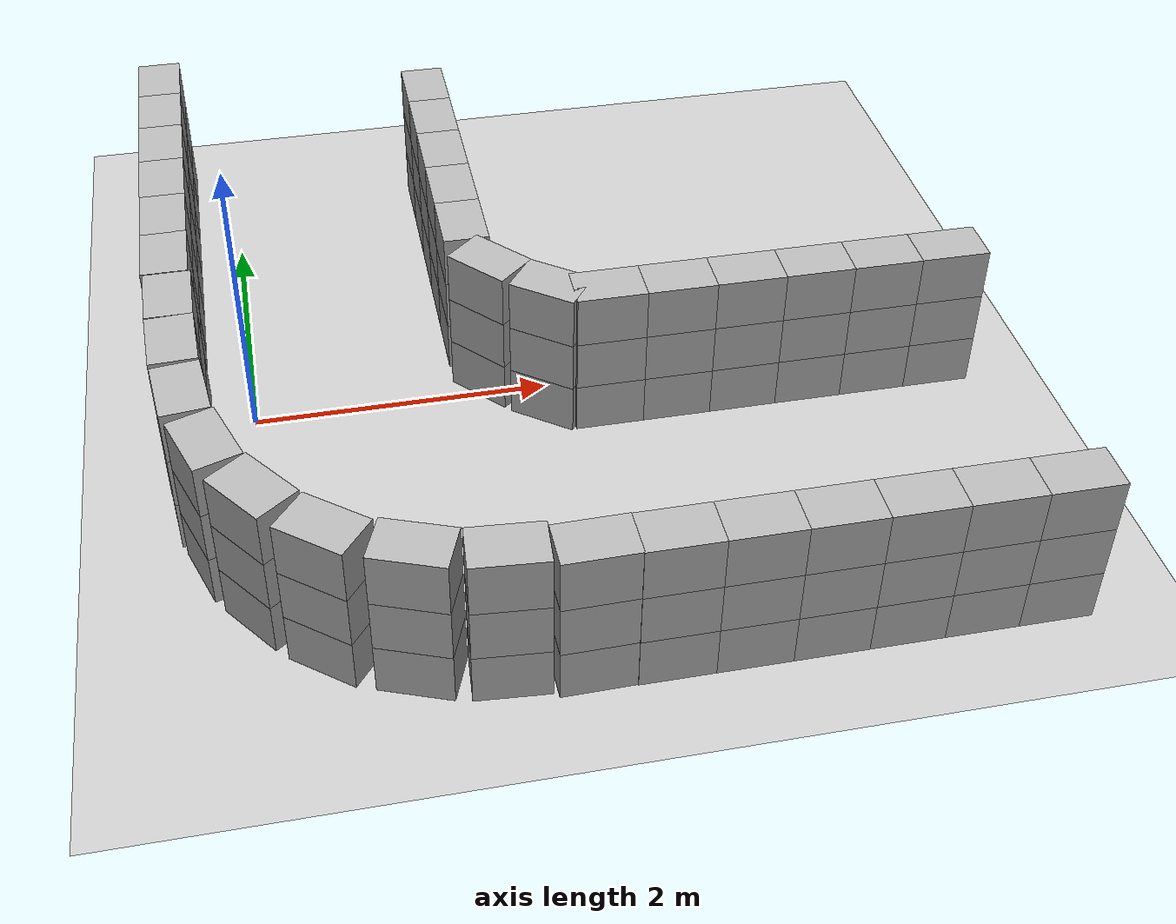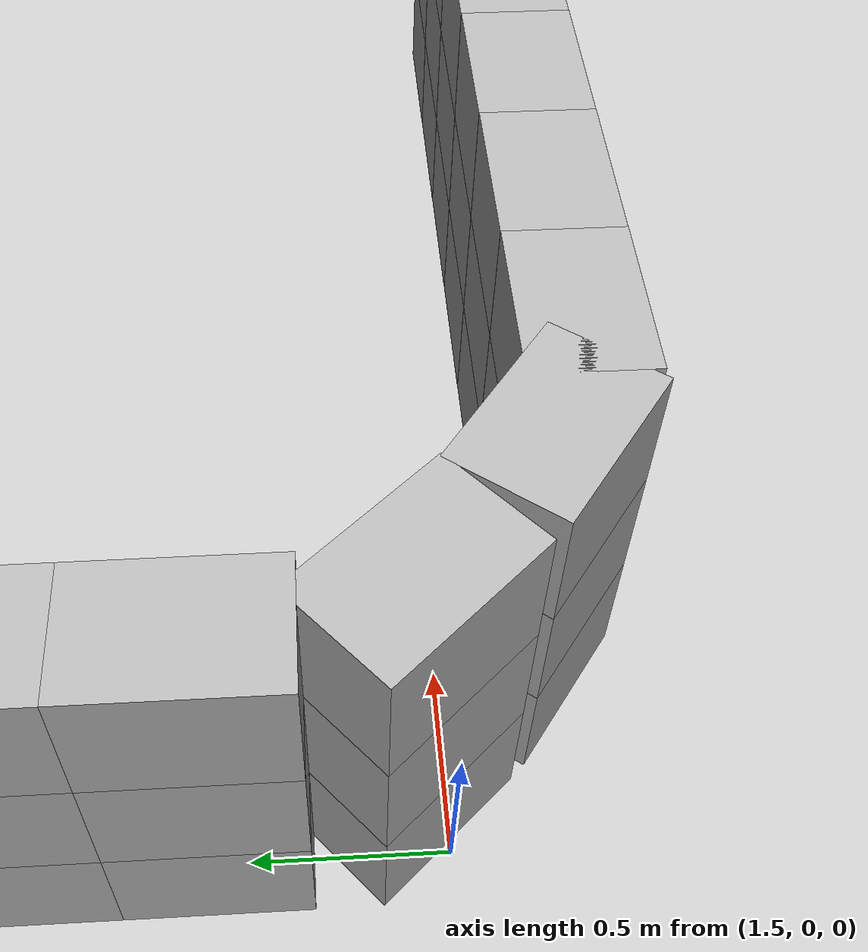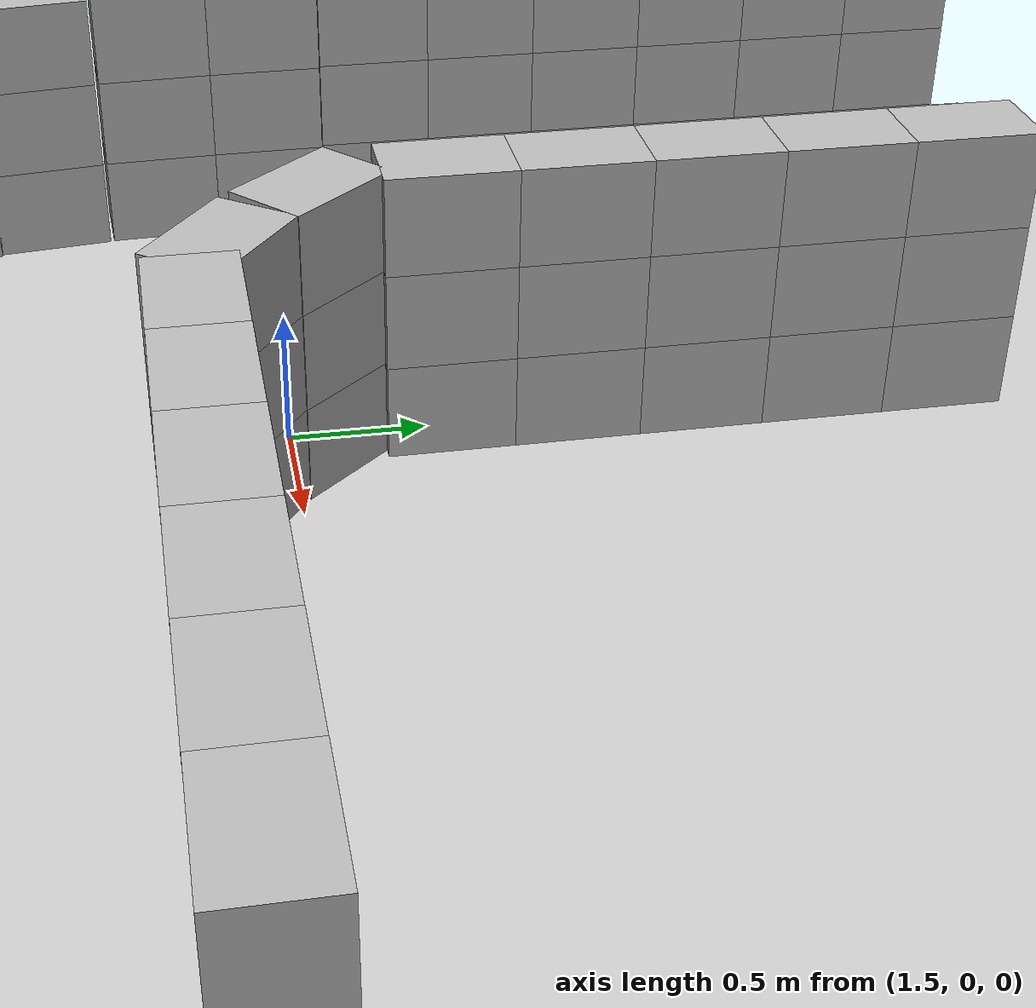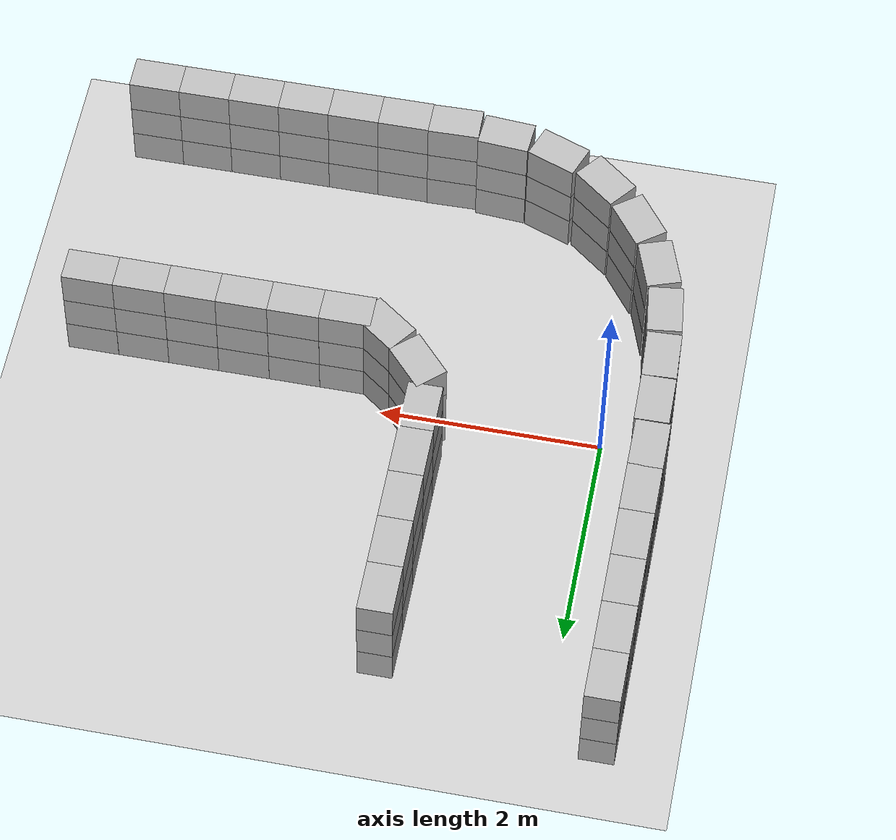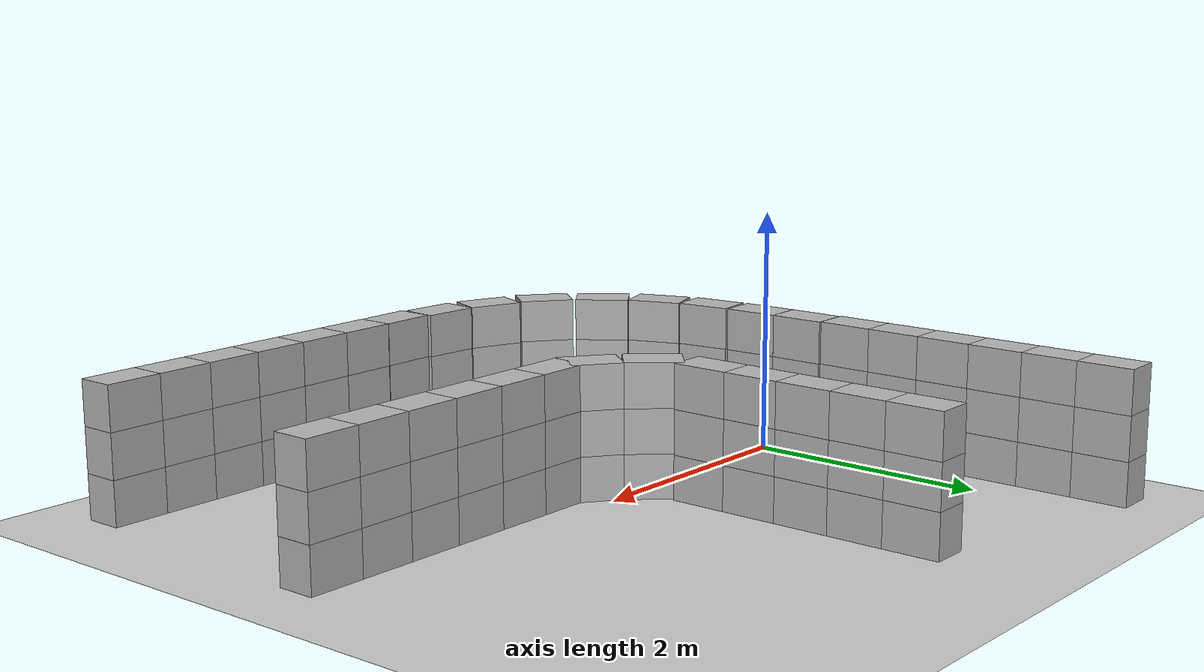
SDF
<sdf version="1.6">
 <world name="default">
  <light name="sun" type="directional">
   <pose>0 0 10 0 -0 0</pose>
   <diffuse>0.8 0.8 0.8 1</diffuse>
   <specular>0.2 0.2 0.2 1</specular>
   <attenuation>
    <range>1000</range>
    <constant>0.9</constant>
    <linear>0.01</linear>
    <quadratic>0.001</quadratic>
   </attenuation>
   <direction>-0.5 0.1 -0.9</direction>
  </light>
  <model name="ground_plane">
   <static>1</static>
   <link name="link">
    <collision name="collision">
     <geometry><plane><normal>0 0 1</normal><size>100 100</size></plane></geometry>
     <surface>
      <contact><collide_bitmask>65535</collide_bitmask></contact>
      <friction><ode><mu>100</mu><mu2>50</mu2></ode></friction>
     </surface>
    </collision>
    <visual name="visual">
     <cast_shadows>0</cast_shadows>
     <geometry><plane><normal>0 0 1</normal><size>100 100</size></plane></geometry>
     <material>
      <script><uri>file://media/materials/scripts/gazebo.material</uri><name>Gazebo/Grey</name></script>
     </material>
    </visual>
   </link>
  </model>
  <gravity>0 0 -9.8</gravity>
  <magnetic_field>6e-06 2.3e-05 -4.2e-05</magnetic_field>
  <atmosphere type="adiabatic"/>
  <physics name="default_physics" default="0" type="ode">
   <max_step_size>0.001</max_step_size>
   <real_time_factor>1</real_time_factor>
   <real_time_update_rate>1000</real_time_update_rate>
  </physics>
  <scene><ambient>0.4 0.4 0.4 1</ambient><background>0.7 0.7 0.7 1</background><shadows>1</shadows></scene>
  <audio><device>default</device></audio>
  <spherical_coordinates>
   <surface_model>EARTH_WGS84</surface_model>
   <latitude_deg>0</latitude_deg>
   <longitude_deg>0</longitude_deg>
   <elevation>0</elevation>
   <heading_deg>0</heading_deg>
  </spherical_coordinates>
  <model name="1_stack">
   <pose>0.81666 -2.39959 0 0 0 -1.93288</pose>
   <static>1</static>
   <link name="link_0">
    <collision name="collision_0">
     <pose>0 0 0.18 0 -0 3.14</pose>
     <geometry><box><size>0.31 0.465 0.36</size></box></geometry>
    </collision>
    <visual name="visual_0">
     <pose>0 0 0.18 0 -0 3.14</pose>
     <geometry><mesh><uri>model://L-corridor_curve_real/meshes/exact_blue_circle_border.dae</uri></mesh></geometry>
    </visual>
   </link>
   <link name="link_1">
    <collision name="collision_1">
     <pose>0 0 0.54 0 -0 3.14</pose>
     <geometry><box><size>0.31 0.465 0.36</size></box></geometry>
    </collision>
    <visual name="visual_1">
     <pose>0 0 0.54 0 -0 3.14</pose>
     <geometry><mesh><uri>model://L-corridor_curve_real/meshes/exact_red_circle_border.dae</uri></mesh></geometry>
    </visual>
   </link>
   <link name="link_2">
    <collision name="collision_2">
     <pose>0 0 0.9 0 -0 3.14</pose>
     <geometry><box><size>0.31 0.465 0.36</size></box></geometry>
    </collision>
    <visual name="visual_2">
     <pose>0 0 0.9 0 -0 3.14</pose>
     <geometry>
      <mesh><uri>model://L-corridor_curve_real/meshes/exact_green_circle_border.dae</uri></mesh>
     </geometry>
    </visual>
   </link>
  </model>
  <model name="1_stack_0">
   <pose>0.348564 -2.15881 0.001177 0 0 -2.24214</pose>
   <static>1</static>
   <link name="link_0">
    <collision name="collision_0">
     <pose>0 0 0.18 0 -0 3.14</pose>
     <geometry><box><size>0.31 0.465 0.36</size></box></geometry>
    </collision>
    <visual name="visual_0">
     <pose>0 0 0.18 0 -0 3.14</pose>
     <geometry><mesh><uri>model://L-corridor_curve_real/meshes/exact_blue_circle_border.dae</uri></mesh></geometry>
    </visual>
   </link>
   <link name="link_1">
    <collision name="collision_1">
     <pose>0 0 0.54 0 -0 3.14</pose>
     <geometry><box><size>0.31 0.465 0.36</size></box></geometry>
    </collision>
    <visual name="visual_1">
     <pose>0 0 0.54 0 -0 3.14</pose>
     <geometry><mesh><uri>model://L-corridor_curve_real/meshes/exact_red_circle_border.dae</uri></mesh></geometry>
    </visual>
   </link>
   <link name="link_2">
    <collision name="collision_2">
     <pose>0 0 0.9 0 -0 3.14</pose>
     <geometry><box><size>0.31 0.465 0.36</size></box></geometry>
    </collision>
    <visual name="visual_2">
     <pose>0 0 0.9 0 -0 3.14</pose>
     <geometry>
      <mesh><uri>model://L-corridor_curve_real/meshes/exact_green_circle_border.dae</uri></mesh>
     </geometry>
    </visual>
   </link>
  </model>
  <model name="1_stack_1">
   <pose>-0.264245 -1.33617 0 0 0 -2.80583</pose>
   <static>1</static>
   <link name="link_0">
    <collision name="collision_0">
     <pose>0 0 0.18 0 -0 3.14</pose>
     <geometry><box><size>0.31 0.465 0.36</size></box></geometry>
    </collision>
    <visual name="visual_0">
     <pose>0 0 0.18 0 -0 3.14</pose>
     <geometry><mesh><uri>model://L-corridor_curve_real/meshes/exact_blue_circle_border.dae</uri></mesh></geometry>
    </visual>
   </link>
   <link name="link_1">
    <collision name="collision_1">
     <pose>0 0 0.54 0 -0 3.14</pose>
     <geometry><box><size>0.31 0.465 0.36</size></box></geometry>
    </collision>
    <visual name="visual_1">
     <pose>0 0 0.54 0 -0 3.14</pose>
     <geometry><mesh><uri>model://L-corridor_curve_real/meshes/exact_red_circle_border.dae</uri></mesh></geometry>
    </visual>
   </link>
   <link name="link_2">
    <collision name="collision_2">
     <pose>0 0 0.9 0 -0 3.14</pose>
     <geometry><box><size>0.31 0.465 0.36</size></box></geometry>
    </collision>
    <visual name="visual_2">
     <pose>0 0 0.9 0 -0 3.14</pose>
     <geometry>
      <mesh><uri>model://L-corridor_curve_real/meshes/exact_green_circle_border.dae</uri></mesh>
     </geometry>
    </visual>
   </link>
  </model>
  <model name="1_stack_2">
   <pose>-0.013512 -1.78211 0 0 0 -2.4998</pose>
   <static>1</static>
   <link name="link_0">
    <collision name="collision_0">
     <pose>0 0 0.18 0 -0 3.14</pose>
     <geometry><box><size>0.31 0.465 0.36</size></box></geometry>
    </collision>
    <visual name="visual_0">
     <pose>0 0 0.18 0 -0 3.14</pose>
     <geometry><mesh><uri>model://L-corridor_curve_real/meshes/exact_blue_circle_border.dae</uri></mesh></geometry>
    </visual>
   </link>
   <link name="link_1">
    <collision name="collision_1">
     <pose>0 0 0.54 0 -0 3.14</pose>
     <geometry><box><size>0.31 0.465 0.36</size></box></geometry>
    </collision>
    <visual name="visual_1">
     <pose>0 0 0.54 0 -0 3.14</pose>
     <geometry><mesh><uri>model://L-corridor_curve_real/meshes/exact_red_circle_border.dae</uri></mesh></geometry>
    </visual>
   </link>
   <link name="link_2">
    <collision name="collision_2">
     <pose>0 0 0.9 0 -0 3.14</pose>
     <geometry><box><size>0.31 0.465 0.36</size></box></geometry>
    </collision>
    <visual name="visual_2">
     <pose>0 0 0.9 0 -0 3.14</pose>
     <geometry>
      <mesh><uri>model://L-corridor_curve_real/meshes/exact_green_circle_border.dae</uri></mesh>
     </geometry>
    </visual>
   </link>
  </model>
  <light name="user_point_light_0" type="point">
   <pose>2.52026 -1.84293 1 0 -0 0</pose>
   <diffuse>0.5 0.5 0.5 1</diffuse>
   <specular>0.1 0.1 0.1 1</specular>
   <attenuation>
    <range>20</range>
    <constant>0.5</constant>
    <linear>0.01</linear>
    <quadratic>0.001</quadratic>
   </attenuation>
   <cast_shadows>0</cast_shadows>
   <direction>0 0 -1</direction>
  </light>
  <model name="realistic_curve_side1">
   <pose>4.68185 -0.326887 0 0 -0 1.5708</pose>
   <static>1</static>
   <link name="link_0">
    <collision name="collision_0">
     <pose>0 0 0.18 0 -0 3.14</pose>
     <geometry><box><size>0.31 0.465 0.36</size></box></geometry>
    </collision>
    <visual name="visual_0">
     <pose>0 0 0.18 0 -0 3.14</pose>
     <geometry><mesh><uri>model://L-corridor_curve_real/meshes/exact_blue_circle_border.dae</uri></mesh></geometry>
    </visual>
   </link>
   <link name="link_1">
    <collision name="collision_1">
     <pose>0 0 0.54 0 -0 3.14</pose>
     <geometry><box><size>0.31 0.465 0.36</size></box></geometry>
    </collision>
    <visual name="visual_1">
     <pose>0 0 0.54 0 -0 3.14</pose>
     <geometry><mesh><uri>model://L-corridor_curve_real/meshes/exact_red_circle_border.dae</uri></mesh></geometry>
    </visual>
   </link>
   <link name="link_2">
    <collision name="collision_2">
     <pose>0 0 0.9 0 -0 3.14</pose>
     <geometry><box><size>0.31 0.465 0.36</size></box></geometry>
    </collision>
    <visual name="visual_2">
     <pose>0 0 0.9 0 -0 3.14</pose>
     <geometry>
      <mesh><uri>model://L-corridor_curve_real/meshes/exact_green_circle_border.dae</uri></mesh>
     </geometry>
    </visual>
   </link>
   <link name="link_3">
    <collision name="collision_3">
     <pose>0 0.465 0.54 0 -0 3.14</pose>
     <geometry><box><size>0.31 0.465 0.36</size></box></geometry>
    </collision>
    <visual name="visual_3">
     <pose>0 0.465 0.54 0 -0 3.14</pose>
     <geometry><mesh><uri>model://L-corridor_curve_real/meshes/exact_blue_circle_border.dae</uri></mesh></geometry>
    </visual>
   </link>
   <link name="link_4">
    <collision name="collision_4">
     <pose>0 0.465 0.9 0 -0 3.14</pose>
     <geometry><box><size>0.31 0.465 0.36</size></box></geometry>
    </collision>
    <visual name="visual_4">
     <pose>0 0.465 0.9 0 -0 3.14</pose>
     <geometry><mesh><uri>model://L-corridor_curve_real/meshes/exact_red_circle_border.dae</uri></mesh></geometry>
    </visual>
   </link>
   <link name="link_5">
    <collision name="collision_5">
     <pose>0 0.465 0.18 0 -0 3.14</pose>
     <geometry><box><size>0.31 0.465 0.36</size></box></geometry>
    </collision>
    <visual name="visual_5">
     <pose>0 0.465 0.18 0 -0 3.14</pose>
     <geometry>
      <mesh><uri>model://L-corridor_curve_real/meshes/exact_green_circle_border.dae</uri></mesh>
     </geometry>
    </visual>
   </link>
   <link name="link_6">
    <collision name="collision_6">
     <pose>0 0.93 0.9 0 -0 3.14</pose>
     <geometry><box><size>0.31 0.465 0.36</size></box></geometry>
    </collision>
    <visual name="visual_6">
     <pose>0 0.93 0.9 0 -0 3.14</pose>
     <geometry><mesh><uri>model://L-corridor_curve_real/meshes/exact_blue_circle_border.dae</uri></mesh></geometry>
    </visual>
   </link>
   <link name="link_7">
    <collision name="collision_7">
     <pose>0 0.93 0.18 0 -0 3.14</pose>
     <geometry><box><size>0.31 0.465 0.36</size></box></geometry>
    </collision>
    <visual name="visual_7">
     <pose>0 0.93 0.18 0 -0 3.14</pose>
     <geometry><mesh><uri>model://L-corridor_curve_real/meshes/exact_red_circle_border.dae</uri></mesh></geometry>
    </visual>
   </link>
   <link name="link_8">
    <collision name="collision_8">
     <pose>0 0.93 0.54 0 -0 3.14</pose>
     <geometry><box><size>0.31 0.465 0.36</size></box></geometry>
    </collision>
    <visual name="visual_8">
     <pose>0 0.93 0.54 0 -0 3.14</pose>
     <geometry>
      <mesh><uri>model://L-corridor_curve_real/meshes/exact_green_circle_border.dae</uri></mesh>
     </geometry>
    </visual>
   </link>
   <link name="link_9">
    <collision name="collision_9">
     <pose>0 1.395 0.18 0 -0 3.14</pose>
     <geometry><box><size>0.31 0.465 0.36</size></box></geometry>
    </collision>
    <visual name="visual_9">
     <pose>0 1.395 0.18 0 -0 3.14</pose>
     <geometry><mesh><uri>model://L-corridor_curve_real/meshes/exact_blue_circle_border.dae</uri></mesh></geometry>
    </visual>
   </link>
   <link name="link_10">
    <collision name="collision_10">
     <pose>0 1.395 0.54 0 -0 3.14</pose>
     <geometry><box><size>0.31 0.465 0.36</size></box></geometry>
    </collision>
    <visual name="visual_10">
     <pose>0 1.395 0.54 0 -0 3.14</pose>
     <geometry><mesh><uri>model://L-corridor_curve_real/meshes/exact_red_circle_border.dae</uri></mesh></geometry>
    </visual>
   </link>
   <link name="link_11">
    <collision name="collision_11">
     <pose>0 1.395 0.9 0 -0 3.14</pose>
     <geometry><box><size>0.31 0.465 0.36</size></box></geometry>
    </collision>
    <visual name="visual_11">
     <pose>0 1.395 0.9 0 -0 3.14</pose>
     <geometry>
      <mesh><uri>model://L-corridor_curve_real/meshes/exact_green_circle_border.dae</uri></mesh>
     </geometry>
    </visual>
   </link>
   <link name="link_12">
    <collision name="collision_12">
     <pose>0 1.86 0.54 0 -0 3.14</pose>
     <geometry><box><size>0.31 0.465 0.36</size></box></geometry>
    </collision>
    <visual name="visual_12">
     <pose>0 1.86 0.54 0 -0 3.14</pose>
     <geometry><mesh><uri>model://L-corridor_curve_real/meshes/exact_blue_circle_border.dae</uri></mesh></geometry>
    </visual>
   </link>
   <link name="link_13">
    <collision name="collision_13">
     <pose>0 1.86 0.9 0 -0 3.14</pose>
     <geometry><box><size>0.31 0.465 0.36</size></box></geometry>
    </collision>
    <visual name="visual_13">
     <pose>0 1.86 0.9 0 -0 3.14</pose>
     <geometry><mesh><uri>model://L-corridor_curve_real/meshes/exact_red_circle_border.dae</uri></mesh></geometry>
    </visual>
   </link>
   <link name="link_14">
    <collision name="collision_14">
     <pose>0 1.86 0.18 0 -0 3.14</pose>
     <geometry><box><size>0.31 0.465 0.36</size></box></geometry>
    </collision>
    <visual name="visual_14">
     <pose>0 1.86 0.18 0 -0 3.14</pose>
     <geometry>
      <mesh><uri>model://L-corridor_curve_real/meshes/exact_green_circle_border.dae</uri></mesh>
     </geometry>
    </visual>
   </link>
   <link name="link_15">
    <collision name="collision_15">
     <pose>0 2.325 0 3.14159 0.001593 3.14159</pose>
     <geometry><box><size>0.31 0.465 0.36</size></box></geometry>
    </collision>
    <visual name="visual_15">
     <pose>0 2.325 0.9 0 -0 3.14</pose>
     <geometry><mesh><uri>model://L-corridor_curve_real/meshes/exact_blue_circle_border.dae</uri></mesh></geometry>
    </visual>
   </link>
   <link name="link_16">
    <collision name="collision_16">
     <pose>0 2.325 0.18 0 -0 3.14</pose>
     <geometry><box><size>0.31 0.465 0.36</size></box></geometry>
    </collision>
    <visual name="visual_16">
     <pose>0 2.325 0.18 0 -0 3.14</pose>
     <geometry><mesh><uri>model://L-corridor_curve_real/meshes/exact_red_circle_border.dae</uri></mesh></geometry>
    </visual>
   </link>
   <link name="link_17">
    <collision name="collision_17">
     <pose>0 2.325 0.54 0 -0 3.14</pose>
     <geometry><box><size>0.31 0.465 0.36</size></box></geometry>
    </collision>
    <visual name="visual_17">
     <pose>0 2.325 0.54 0 -0 3.14</pose>
     <geometry>
      <mesh><uri>model://L-corridor_curve_real/meshes/exact_green_circle_border.dae</uri></mesh>
     </geometry>
    </visual>
   </link>
   <link name="link_18">
    <collision name="collision_18">
     <pose>0.1 2.68 0.18 0 -0 2.5</pose>
     <geometry><box><size>0.31 0.465 0.36</size></box></geometry>
    </collision>
    <visual name="visual_18">
     <pose>0.1 2.68 0.18 0 -0 2.5</pose>
     <geometry><mesh><uri>model://L-corridor_curve_real/meshes/exact_blue_circle_border.dae</uri></mesh></geometry>
    </visual>
   </link>
   <link name="link_19">
    <collision name="collision_19">
     <pose>0.1 2.68 0.54 0 -0 2.5</pose>
     <geometry><box><size>0.31 0.465 0.36</size></box></geometry>
    </collision>
    <visual name="visual_19">
     <pose>0.1 2.68 0.54 0 -0 2.5</pose>
     <geometry><mesh><uri>model://L-corridor_curve_real/meshes/exact_red_circle_border.dae</uri></mesh></geometry>
    </visual>
   </link>
   <link name="link_20">
    <collision name="collision_20">
     <pose>0.1 2.68 0.9 0 -0 2.5</pose>
     <geometry><box><size>0.31 0.465 0.36</size></box></geometry>
    </collision>
    <visual name="visual_20">
     <pose>0.1 2.68 0.9 0 -0 2.5</pose>
     <geometry>
      <mesh><uri>model://L-corridor_curve_real/meshes/exact_green_circle_border.dae</uri></mesh>
     </geometry>
    </visual>
   </link>
   <link name="link_21">
    <collision name="collision_21">
     <pose>0.43 3.035 0.54 0 -0 2.3</pose>
     <geometry><box><size>0.31 0.465 0.36</size></box></geometry>
    </collision>
    <visual name="visual_21">
     <pose>0.43 3.035 0.54 0 -0 2.3</pose>
     <geometry><mesh><uri>model://L-corridor_curve_real/meshes/exact_blue_circle_border.dae</uri></mesh></geometry>
    </visual>
   </link>
   <link name="link_22">
    <collision name="collision_22">
     <pose>0.43 2.325 0.9 0 -0 2.3</pose>
     <geometry><box><size>0.31 0.465 0.36</size></box></geometry>
    </collision>
    <visual name="visual_22">
     <pose>0.43 3.035 0.9 0 -0 2.3</pose>
     <geometry><mesh><uri>model://L-corridor_curve_real/meshes/exact_red_circle_border.dae</uri></mesh></geometry>
    </visual>
   </link>
   <link name="link_23">
    <collision name="collision_23">
     <pose>0.43 3.035 0.18 0 -0 2.3</pose>
     <geometry><box><size>0.31 0.465 0.36</size></box></geometry>
    </collision>
    <visual name="visual_23">
     <pose>0.43 3.035 0.18 0 -0 2.3</pose>
     <geometry>
      <mesh><uri>model://L-corridor_curve_real/meshes/exact_green_circle_border.dae</uri></mesh>
     </geometry>
    </visual>
   </link>
   <link name="link_24">
    <collision name="collision_24">
     <pose>0.9 3.15 0.9 3.14159 1.57079 3.14159</pose>
     <geometry><box><size>0.31 0.465 0.36</size></box></geometry>
    </collision>
    <visual name="visual_24">
     <pose>0.9 3.15 0.9 0 -0 1.5708</pose>
     <geometry><mesh><uri>model://L-corridor_curve_real/meshes/exact_blue_circle_border.dae</uri></mesh></geometry>
    </visual>
   </link>
   <link name="link_25">
    <collision name="collision_25">
     <pose>0.9 3.15 0.18 0 -0 1.5708</pose>
     <geometry><box><size>0.31 0.465 0.36</size></box></geometry>
    </collision>
    <visual name="visual_25">
     <pose>0.9 3.15 0.18 0 -0 1.5708</pose>
     <geometry><mesh><uri>model://L-corridor_curve_real/meshes/exact_red_circle_border.dae</uri></mesh></geometry>
    </visual>
   </link>
   <link name="link_26">
    <collision name="collision_26">
     <pose>0.9 3.15 0.54 0 -0 1.5708</pose>
     <geometry><box><size>0.31 0.465 0.36</size></box></geometry>
    </collision>
    <visual name="visual_26">
     <pose>0.9 3.15 0.54 0 -0 1.5708</pose>
     <geometry>
      <mesh><uri>model://L-corridor_curve_real/meshes/exact_green_circle_border.dae</uri></mesh>
     </geometry>
    </visual>
   </link>
   <link name="link_27">
    <collision name="collision_27">
     <pose>1.365 3.15 0.18 0 -0 1.5708</pose>
     <geometry><box><size>0.31 0.465 0.36</size></box></geometry>
    </collision>
    <visual name="visual_27">
     <pose>1.365 3.15 0.18 0 -0 1.5708</pose>
     <geometry><mesh><uri>model://L-corridor_curve_real/meshes/exact_blue_circle_border.dae</uri></mesh></geometry>
    </visual>
   </link>
   <link name="link_28">
    <collision name="collision_28">
     <pose>1.365 3.15 0.54 0 -0 1.5708</pose>
     <geometry><box><size>0.31 0.465 0.36</size></box></geometry>
    </collision>
    <visual name="visual_28">
     <pose>1.365 3.15 0.54 0 -0 1.5708</pose>
     <geometry><mesh><uri>model://L-corridor_curve_real/meshes/exact_red_circle_border.dae</uri></mesh></geometry>
    </visual>
   </link>
   <link name="link_29">
    <collision name="collision_29">
     <pose>1.365 3.15 0.9 0 -0 1.5708</pose>
     <geometry><box><size>0.31 0.465 0.36</size></box></geometry>
    </collision>
    <visual name="visual_29">
     <pose>1.365 3.15 0.9 0 -0 1.5708</pose>
     <geometry>
      <mesh><uri>model://L-corridor_curve_real/meshes/exact_green_circle_border.dae</uri></mesh>
     </geometry>
    </visual>
   </link>
   <link name="link_30">
    <collision name="collision_30">
     <pose>1.83 3.15 0.54 0 -0 1.5708</pose>
     <geometry><box><size>0.31 0.465 0.36</size></box></geometry>
    </collision>
    <visual name="visual_30">
     <pose>1.83 3.15 0.54 0 -0 1.5708</pose>
     <geometry><mesh><uri>model://L-corridor_curve_real/meshes/exact_blue_circle_border.dae</uri></mesh></geometry>
    </visual>
   </link>
   <link name="link_31">
    <collision name="collision_31">
     <pose>1.83 3.15 0.9 0 -0 1.5708</pose>
     <geometry><box><size>0.31 0.465 0.36</size></box></geometry>
    </collision>
    <visual name="visual_31">
     <pose>1.83 3.15 0.9 0 -0 1.5708</pose>
     <geometry><mesh><uri>model://L-corridor_curve_real/meshes/exact_red_circle_border.dae</uri></mesh></geometry>
    </visual>
   </link>
   <link name="link_32">
    <collision name="collision_32">
     <pose>1.83 3.15 0.18 0 -0 1.5708</pose>
     <geometry><box><size>0.31 0.465 0.36</size></box></geometry>
    </collision>
    <visual name="visual_32">
     <pose>1.83 3.15 0.18 0 -0 1.5708</pose>
     <geometry>
      <mesh><uri>model://L-corridor_curve_real/meshes/exact_green_circle_border.dae</uri></mesh>
     </geometry>
    </visual>
   </link>
   <link name="link_33">
    <collision name="collision_33">
     <pose>2.295 3.15 0.9 3.14159 1.57079 3.14159</pose>
     <geometry><box><size>0.31 0.465 0.36</size></box></geometry>
    </collision>
    <visual name="visual_33">
     <pose>2.295 3.15 0.9 0 -0 1.5708</pose>
     <geometry><mesh><uri>model://L-corridor_curve_real/meshes/exact_blue_circle_border.dae</uri></mesh></geometry>
    </visual>
   </link>
   <link name="link_34">
    <collision name="collision_34">
     <pose>2.295 3.15 0.18 0 -0 1.5708</pose>
     <geometry><box><size>0.31 0.465 0.36</size></box></geometry>
    </collision>
    <visual name="visual_34">
     <pose>2.295 3.15 0.18 0 -0 1.5708</pose>
     <geometry><mesh><uri>model://L-corridor_curve_real/meshes/exact_red_circle_border.dae</uri></mesh></geometry>
    </visual>
   </link>
   <link name="link_35">
    <collision name="collision_35">
     <pose>2.295 3.15 0.54 0 -0 1.5708</pose>
     <geometry><box><size>0.31 0.465 0.36</size></box></geometry>
    </collision>
    <visual name="visual_35">
     <pose>2.295 3.15 0.54 0 -0 1.5708</pose>
     <geometry>
      <mesh><uri>model://L-corridor_curve_real/meshes/exact_green_circle_border.dae</uri></mesh>
     </geometry>
    </visual>
   </link>
   <link name="link_36">
    <collision name="collision_36">
     <pose>2.76 3.15 0.18 0 -0 1.5708</pose>
     <geometry><box><size>0.31 0.465 0.36</size></box></geometry>
    </collision>
    <visual name="visual_36">
     <pose>2.76 3.15 0.18 0 -0 1.5708</pose>
     <geometry><mesh><uri>model://L-corridor_curve_real/meshes/exact_blue_circle_border.dae</uri></mesh></geometry>
    </visual>
   </link>
   <link name="link_37">
    <collision name="collision_37">
     <pose>2.76 3.15 0.54 0 -0 1.5708</pose>
     <geometry><box><size>0.31 0.465 0.36</size></box></geometry>
    </collision>
    <visual name="visual_37">
     <pose>2.76 3.15 0.54 0 -0 1.5708</pose>
     <geometry><mesh><uri>model://L-corridor_curve_real/meshes/exact_red_circle_border.dae</uri></mesh></geometry>
    </visual>
   </link>
   <link name="link_38">
    <collision name="collision_38">
     <pose>2.76 3.15 0.9 0 -0 1.5708</pose>
     <geometry><box><size>0.31 0.465 0.36</size></box></geometry>
    </collision>
    <visual name="visual_38">
     <pose>2.76 3.15 0.9 0 -0 1.5708</pose>
     <geometry>
      <mesh><uri>model://L-corridor_curve_real/meshes/exact_green_circle_border.dae</uri></mesh>
     </geometry>
    </visual>
   </link>
  </model>
  <model name="realistic_curve_side2_1">
   <pose>4.58227 -1.26122 0 0 -0 1.5708</pose>
   <static>1</static>
   <link name="link_0_0">
    <collision name="collision_0_0">
     <pose>-1.3 0 0.18 0 -0 0</pose>
     <geometry><box><size>0.31 0.465 0.36</size></box></geometry>
    </collision>
    <visual name="visual_0_0">
     <pose>-1.3 0 0.18 0 -0 0</pose>
     <geometry><mesh><uri>model://L-corridor_curve_real/meshes/exact_blue_circle_border.dae</uri></mesh></geometry>
    </visual>
   </link>
   <link name="link_1_0">
    <collision name="collision_1_0">
     <pose>-1.3 0.54 0 0 -0 0</pose>
     <geometry><box><size>0.31 0.465 0.36</size></box></geometry>
    </collision>
    <visual name="visual_1_0">
     <pose>-1.3 0 0.54 0 -0 0</pose>
     <geometry><mesh><uri>model://L-corridor_curve_real/meshes/exact_red_circle_border.dae</uri></mesh></geometry>
    </visual>
   </link>
   <link name="link_2_0">
    <collision name="collision_2_0">
     <pose>-1.3 0 0.9 0 -0 0</pose>
     <geometry><box><size>0.31 0.465 0.36</size></box></geometry>
    </collision>
    <visual name="visual_2_0">
     <pose>-1.3 0 0.9 0 -0 0</pose>
     <geometry>
      <mesh><uri>model://L-corridor_curve_real/meshes/exact_green_circle_border.dae</uri></mesh>
     </geometry>
    </visual>
   </link>
   <link name="link_3_0">
    <collision name="collision_3_0">
     <pose>-1.3 0.465 0.54 0 -0 0</pose>
     <geometry><box><size>0.31 0.465 0.36</size></box></geometry>
    </collision>
    <visual name="visual_3_0">
     <pose>-1.3 0.465 0.54 0 -0 0</pose>
     <geometry><mesh><uri>model://L-corridor_curve_real/meshes/exact_blue_circle_border.dae</uri></mesh></geometry>
    </visual>
   </link>
   <link name="link_4_0">
    <collision name="collision_4_0">
     <pose>-1.3 0.465 0.9 0 -0 0</pose>
     <geometry><box><size>0.31 0.465 0.36</size></box></geometry>
    </collision>
    <visual name="visual_4_0">
     <pose>-1.3 0.465 0.9 0 -0 0</pose>
     <geometry><mesh><uri>model://L-corridor_curve_real/meshes/exact_red_circle_border.dae</uri></mesh></geometry>
    </visual>
   </link>
   <link name="link_5_0">
    <collision name="collision_5_0">
     <pose>-1.3 0.465 0.18 0 -0 0</pose>
     <geometry><box><size>0.31 0.465 0.36</size></box></geometry>
    </collision>
    <visual name="visual_5_0">
     <pose>-1.3 0.465 0.18 0 -0 0</pose>
     <geometry>
      <mesh><uri>model://L-corridor_curve_real/meshes/exact_green_circle_border.dae</uri></mesh>
     </geometry>
    </visual>
   </link>
   <link name="link_6_0">
    <collision name="collision_6_0">
     <pose>-1.3 0.93 0.9 0 -0 0</pose>
     <geometry><box><size>0.31 0.465 0.36</size></box></geometry>
    </collision>
    <visual name="visual_6_0">
     <pose>-1.3 0.93 0.9 0 -0 0</pose>
     <geometry><mesh><uri>model://L-corridor_curve_real/meshes/exact_blue_circle_border.dae</uri></mesh></geometry>
    </visual>
   </link>
   <link name="link_7_0">
    <collision name="collision_7_0">
     <pose>-1.3 0.93 0.18 0 -0 0</pose>
     <geometry><box><size>0.31 0.465 0.36</size></box></geometry>
    </collision>
    <visual name="visual_7_0">
     <pose>-1.3 0.93 0.18 0 -0 0</pose>
     <geometry><mesh><uri>model://L-corridor_curve_real/meshes/exact_red_circle_border.dae</uri></mesh></geometry>
    </visual>
   </link>
   <link name="link_8_0">
    <collision name="collision_8_0">
     <pose>-1.3 0.93 0.54 0 -0 0</pose>
     <geometry><box><size>0.31 0.465 0.36</size></box></geometry>
    </collision>
    <visual name="visual_8_0">
     <pose>-1.3 0.93 0.54 0 -0 0</pose>
     <geometry>
      <mesh><uri>model://L-corridor_curve_real/meshes/exact_green_circle_border.dae</uri></mesh>
     </geometry>
    </visual>
   </link>
   <link name="link_9_0">
    <collision name="collision_9_0">
     <pose>-1.3 1.395 0.18 0 -0 0</pose>
     <geometry><box><size>0.31 0.465 0.36</size></box></geometry>
    </collision>
    <visual name="visual_9_0">
     <pose>-1.3 1.395 0.18 0 -0 0</pose>
     <geometry><mesh><uri>model://L-corridor_curve_real/meshes/exact_blue_circle_border.dae</uri></mesh></geometry>
    </visual>
   </link>
   <link name="link_10_0">
    <collision name="collision_10_0">
     <pose>-1.3 1.395 0.54 0 -0 0</pose>
     <geometry><box><size>0.31 0.465 0.36</size></box></geometry>
    </collision>
    <visual name="visual_10_0">
     <pose>-1.3 1.395 0.54 0 -0 0</pose>
     <geometry><mesh><uri>model://L-corridor_curve_real/meshes/exact_red_circle_border.dae</uri></mesh></geometry>
    </visual>
   </link>
   <link name="link_11_0">
    <collision name="collision_11_0">
     <pose>-1.3 1.395 0.9 0 -0 0</pose>
     <geometry><box><size>0.31 0.465 0.36</size></box></geometry>
    </collision>
    <visual name="visual_11_0">
     <pose>-1.3 1.395 0.9 0 -0 0</pose>
     <geometry>
      <mesh><uri>model://L-corridor_curve_real/meshes/exact_green_circle_border.dae</uri></mesh>
     </geometry>
    </visual>
   </link>
   <link name="link_12_0">
    <collision name="collision_12_0">
     <pose>-1.3 1.86 0.54 0 -0 0</pose>
     <geometry><box><size>0.31 0.465 0.36</size></box></geometry>
    </collision>
    <visual name="visual_12_0">
     <pose>-1.3 1.86 0.54 0 -0 0</pose>
     <geometry><mesh><uri>model://L-corridor_curve_real/meshes/exact_blue_circle_border.dae</uri></mesh></geometry>
    </visual>
   </link>
   <link name="link_13_0">
    <collision name="collision_13_0">
     <pose>-1.3 1.86 0.9 0 -0 0</pose>
     <geometry><box><size>0.31 0.465 0.36</size></box></geometry>
    </collision>
    <visual name="visual_13_0">
     <pose>-1.3 1.86 0.9 0 -0 0</pose>
     <geometry><mesh><uri>model://L-corridor_curve_real/meshes/exact_red_circle_border.dae</uri></mesh></geometry>
    </visual>
   </link>
   <link name="link_14_0">
    <collision name="collision_14_0">
     <pose>-1.3 1.86 0.18 0 -0 0</pose>
     <geometry><box><size>0.31 0.465 0.36</size></box></geometry>
    </collision>
    <visual name="visual_14_0">
     <pose>-1.3 1.86 0.18 0 -0 0</pose>
     <geometry>
      <mesh><uri>model://L-corridor_curve_real/meshes/exact_green_circle_border.dae</uri></mesh>
     </geometry>
    </visual>
   </link>
   <link name="link_15_0">
    <collision name="collision_15_0">
     <pose>-1.3 2.325 0 0 -0 0</pose>
     <geometry><box><size>0.31 0.465 0.36</size></box></geometry>
    </collision>
    <visual name="visual_15_0">
     <pose>-1.3 2.325 0.9 0 -0 0</pose>
     <geometry><mesh><uri>model://L-corridor_curve_real/meshes/exact_blue_circle_border.dae</uri></mesh></geometry>
    </visual>
   </link>
   <link name="link_16_0">
    <collision name="collision_16_0">
     <pose>-1.3 2.325 0.18 0 -0 0</pose>
     <geometry><box><size>0.31 0.465 0.36</size></box></geometry>
    </collision>
    <visual name="visual_16_0">
     <pose>-1.3 2.325 0.18 0 -0 0</pose>
     <geometry><mesh><uri>model://L-corridor_curve_real/meshes/exact_red_circle_border.dae</uri></mesh></geometry>
    </visual>
   </link>
   <link name="link_17_0">
    <collision name="collision_17_0">
     <pose>-1.3 2.325 0.54 0 -0 0</pose>
     <geometry><box><size>0.31 0.465 0.36</size></box></geometry>
    </collision>
    <visual name="visual_17_0">
     <pose>-1.3 2.325 0.54 0 -0 0</pose>
     <geometry>
      <mesh><uri>model://L-corridor_curve_real/meshes/exact_green_circle_border.dae</uri></mesh>
     </geometry>
    </visual>
   </link>
  </model>
  <model name="realistic_curve_side2_2">
   <pose>3.98422 0.137948 0 0 -0 1.5708</pose>
   <static>1</static>
   <link name="link_18_0">
    <collision name="collision_18_0">
     <pose>0.9 4.45 0.9 3.14159 -1.57079 3.14159</pose>
     <geometry><box><size>0.31 0.465 0.36</size></box></geometry>
    </collision>
    <visual name="visual_18_0">
     <pose>0.9 4.45 0.9 0 0 -1.5708</pose>
     <geometry><mesh><uri>model://L-corridor_curve_real/meshes/exact_blue_circle_border.dae</uri></mesh></geometry>
    </visual>
   </link>
   <link name="link_19_0">
    <collision name="collision_19_0">
     <pose>0.9 4.45 0.18 0 0 -1.5708</pose>
     <geometry><box><size>0.31 0.465 0.36</size></box></geometry>
    </collision>
    <visual name="visual_19_0">
     <pose>0.9 4.45 0.18 0 0 -1.5708</pose>
     <geometry><mesh><uri>model://L-corridor_curve_real/meshes/exact_red_circle_border.dae</uri></mesh></geometry>
    </visual>
   </link>
   <link name="link_20_0">
    <collision name="collision_20_0">
     <pose>0.9 4.45 0.54 0 0 -1.5708</pose>
     <geometry><box><size>0.31 0.465 0.36</size></box></geometry>
    </collision>
    <visual name="visual_20_0">
     <pose>0.9 4.45 0.54 0 0 -1.5708</pose>
     <geometry>
      <mesh><uri>model://L-corridor_curve_real/meshes/exact_green_circle_border.dae</uri></mesh>
     </geometry>
    </visual>
   </link>
   <link name="link_21_0">
    <collision name="collision_21_0">
     <pose>1.365 4.45 0.18 0 0 -1.5708</pose>
     <geometry><box><size>0.31 0.465 0.36</size></box></geometry>
    </collision>
    <visual name="visual_21_0">
     <pose>1.365 4.45 0.18 0 0 -1.5708</pose>
     <geometry><mesh><uri>model://L-corridor_curve_real/meshes/exact_blue_circle_border.dae</uri></mesh></geometry>
    </visual>
   </link>
   <link name="link_22_0">
    <collision name="collision_22_0">
     <pose>1.365 4.45 0.54 0 0 -1.5708</pose>
     <geometry><box><size>0.31 0.465 0.36</size></box></geometry>
    </collision>
    <visual name="visual_22_0">
     <pose>1.365 4.45 0.54 0 0 -1.5708</pose>
     <geometry><mesh><uri>model://L-corridor_curve_real/meshes/exact_red_circle_border.dae</uri></mesh></geometry>
    </visual>
   </link>
   <link name="link_23_0">
    <collision name="collision_23_0">
     <pose>1.365 4.45 0.9 0 0 -1.5708</pose>
     <geometry><box><size>0.31 0.465 0.36</size></box></geometry>
    </collision>
    <visual name="visual_23_0">
     <pose>1.365 4.45 0.9 0 0 -1.5708</pose>
     <geometry>
      <mesh><uri>model://L-corridor_curve_real/meshes/exact_green_circle_border.dae</uri></mesh>
     </geometry>
    </visual>
   </link>
   <link name="link_24_0">
    <collision name="collision_24_0">
     <pose>1.83 4.45 0.54 0 0 -1.5708</pose>
     <geometry><box><size>0.31 0.465 0.36</size></box></geometry>
    </collision>
    <visual name="visual_24_0">
     <pose>1.83 4.45 0.54 0 0 -1.5708</pose>
     <geometry><mesh><uri>model://L-corridor_curve_real/meshes/exact_blue_circle_border.dae</uri></mesh></geometry>
    </visual>
   </link>
   <link name="link_25_0">
    <collision name="collision_25_0">
     <pose>1.83 4.45 0.9 0 0 -1.5708</pose>
     <geometry><box><size>0.31 0.465 0.36</size></box></geometry>
    </collision>
    <visual name="visual_25_0">
     <pose>1.83 4.45 0.9 0 0 -1.5708</pose>
     <geometry><mesh><uri>model://L-corridor_curve_real/meshes/exact_red_circle_border.dae</uri></mesh></geometry>
    </visual>
   </link>
   <link name="link_26_0">
    <collision name="collision_26_0">
     <pose>1.83 4.45 0.18 0 0 -1.5708</pose>
     <geometry><box><size>0.31 0.465 0.36</size></box></geometry>
    </collision>
    <visual name="visual_26_0">
     <pose>1.83 4.45 0.18 0 0 -1.5708</pose>
     <geometry>
      <mesh><uri>model://L-corridor_curve_real/meshes/exact_green_circle_border.dae</uri></mesh>
     </geometry>
    </visual>
   </link>
   <link name="link_27_0">
    <collision name="collision_27_0">
     <pose>2.295 4.45 0.9 3.14159 -1.57079 3.14159</pose>
     <geometry><box><size>0.31 0.465 0.36</size></box></geometry>
    </collision>
    <visual name="visual_27_0">
     <pose>2.295 4.45 0.9 0 0 -1.5708</pose>
     <geometry><mesh><uri>model://L-corridor_curve_real/meshes/exact_blue_circle_border.dae</uri></mesh></geometry>
    </visual>
   </link>
   <link name="link_28_0">
    <collision name="collision_28_0">
     <pose>2.295 4.45 0.18 0 0 -1.5708</pose>
     <geometry><box><size>0.31 0.465 0.36</size></box></geometry>
    </collision>
    <visual name="visual_28_0">
     <pose>2.295 4.45 0.18 0 0 -1.5708</pose>
     <geometry><mesh><uri>model://L-corridor_curve_real/meshes/exact_red_circle_border.dae</uri></mesh></geometry>
    </visual>
   </link>
   <link name="link_29_0">
    <collision name="collision_29_0">
     <pose>2.295 4.45 0.54 0 0 -1.5708</pose>
     <geometry><box><size>0.31 0.465 0.36</size></box></geometry>
    </collision>
    <visual name="visual_29_0">
     <pose>2.295 4.45 0.54 0 0 -1.5708</pose>
     <geometry>
      <mesh><uri>model://L-corridor_curve_real/meshes/exact_green_circle_border.dae</uri></mesh>
     </geometry>
    </visual>
   </link>
   <link name="link_30_0">
    <collision name="collision_30_0">
     <pose>2.76 4.45 0.18 0 0 -1.5708</pose>
     <geometry><box><size>0.31 0.465 0.36</size></box></geometry>
    </collision>
    <visual name="visual_30_0">
     <pose>2.76 4.45 0.18 0 0 -1.5708</pose>
     <geometry><mesh><uri>model://L-corridor_curve_real/meshes/exact_blue_circle_border.dae</uri></mesh></geometry>
    </visual>
   </link>
   <link name="link_31_0">
    <collision name="collision_31_0">
     <pose>2.76 4.45 0.54 0 0 -1.5708</pose>
     <geometry><box><size>0.31 0.465 0.36</size></box></geometry>
    </collision>
    <visual name="visual_31_0">
     <pose>2.76 4.45 0.54 0 0 -1.5708</pose>
     <geometry><mesh><uri>model://L-corridor_curve_real/meshes/exact_red_circle_border.dae</uri></mesh></geometry>
    </visual>
   </link>
   <link name="link_32_0">
    <collision name="collision_32_0">
     <pose>2.76 4.45 0.9 0 0 -1.5708</pose>
     <geometry><box><size>0.31 0.465 0.36</size></box></geometry>
    </collision>
    <visual name="visual_32_0">
     <pose>2.76 4.45 0.9 0 0 -1.5708</pose>
     <geometry>
      <mesh><uri>model://L-corridor_curve_real/meshes/exact_green_circle_border.dae</uri></mesh>
     </geometry>
    </visual>
   </link>
   <link name="link_33_0">
    <collision name="collision_33_0">
     <pose>0.44 4.45 0.54 0 0 -1.5708</pose>
     <geometry><box><size>0.31 0.465 0.36</size></box></geometry>
    </collision>
    <visual name="visual_33_0">
     <pose>0.44 4.45 0.54 0 0 -1.5708</pose>
     <geometry><mesh><uri>model://L-corridor_curve_real/meshes/exact_blue_circle_border.dae</uri></mesh></geometry>
    </visual>
   </link>
   <link name="link_34_0">
    <collision name="collision_34_0">
     <pose>0.4 4.45 0.9 0 0 -1.5708</pose>
     <geometry><box><size>0.31 0.465 0.36</size></box></geometry>
    </collision>
    <visual name="visual_34_0">
     <pose>0.44 4.45 0.9 0 0 -1.5708</pose>
     <geometry><mesh><uri>model://L-corridor_curve_real/meshes/exact_red_circle_border.dae</uri></mesh></geometry>
    </visual>
   </link>
   <link name="link_35_0">
    <collision name="collision_35_0">
     <pose>0.44 4.45 0.18 0 0 -1.5708</pose>
     <geometry><box><size>0.31 0.465 0.36</size></box></geometry>
    </collision>
    <visual name="visual_35_0">
     <pose>0.44 4.45 0.18 0 0 -1.5708</pose>
     <geometry>
      <mesh><uri>model://L-corridor_curve_real/meshes/exact_green_circle_border.dae</uri></mesh>
     </geometry>
    </visual>
   </link>
  </model>
  <model name="1_stack_3">
   <pose>1.79442 -2.56052 0 0 0 -1.55533</pose>
   <static>1</static>
   <link name="link_0">
    <collision name="collision_0">
     <pose>0 0 0.18 0 -0 3.14</pose>
     <geometry><box><size>0.31 0.465 0.36</size></box></geometry>
    </collision>
    <visual name="visual_0">
     <pose>0 0 0.18 0 -0 3.14</pose>
     <geometry><mesh><uri>model://L-corridor_curve_real/meshes/exact_blue_circle_border.dae</uri></mesh></geometry>
    </visual>
   </link>
   <link name="link_1">
    <collision name="collision_1">
     <pose>0 0 0.54 0 -0 3.14</pose>
     <geometry><box><size>0.31 0.465 0.36</size></box></geometry>
    </collision>
    <visual name="visual_1">
     <pose>0 0 0.54 0 -0 3.14</pose>
     <geometry><mesh><uri>model://L-corridor_curve_real/meshes/exact_red_circle_border.dae</uri></mesh></geometry>
    </visual>
   </link>
   <link name="link_2">
    <collision name="collision_2">
     <pose>0 0 0.9 0 -0 3.14</pose>
     <geometry><box><size>0.31 0.465 0.36</size></box></geometry>
    </collision>
    <visual name="visual_2">
     <pose>0 0 0.9 0 -0 3.14</pose>
     <geometry>
      <mesh><uri>model://L-corridor_curve_real/meshes/exact_green_circle_border.dae</uri></mesh>
     </geometry>
    </visual>
   </link>
  </model>
  <model name="1_stack_4">
   <pose>1.31613 -2.51212 0 0 -0 -1.64426</pose>
   <static>1</static>
   <link name="link_0">
    <collision name="collision_0">
     <pose>0 0 0.18 0 -0 3.14</pose>
     <geometry><box><size>0.31 0.465 0.36</size></box></geometry>
    </collision>
    <visual name="visual_0">
     <pose>0 0 0.18 0 -0 3.14</pose>
     <geometry><mesh><uri>model://L-corridor_curve_real/meshes/exact_blue_circle_border.dae</uri></mesh></geometry>
    </visual>
   </link>
   <link name="link_1">
    <collision name="collision_1">
     <pose>0 0 0.54 0 -0 3.14</pose>
     <geometry><box><size>0.31 0.465 0.36</size></box></geometry>
    </collision>
    <visual name="visual_1">
     <pose>0 0 0.54 0 -0 3.14</pose>
     <geometry><mesh><uri>model://L-corridor_curve_real/meshes/exact_red_circle_border.dae</uri></mesh></geometry>
    </visual>
   </link>
   <link name="link_2">
    <collision name="collision_2">
     <pose>0 0 0.9 0 -0 3.14</pose>
     <geometry><box><size>0.31 0.465 0.36</size></box></geometry>
    </collision>
    <visual name="visual_2">
     <pose>0 0 0.9 0 -0 3.14</pose>
     <geometry>
      <mesh><uri>model://L-corridor_curve_real/meshes/exact_green_circle_border.dae</uri></mesh>
     </geometry>
    </visual>
   </link>
  </model>
  <model name="1_stack_5">
   <pose>-0.390074 -0.851205 0 0 -0 -3.024</pose>
   <static>1</static>
   <link name="link_0">
    <collision name="collision_0">
     <pose>0 0 0.18 0 -0 3.14</pose>
     <geometry><box><size>0.31 0.465 0.36</size></box></geometry>
    </collision>
    <visual name="visual_0">
     <pose>0 0 0.18 0 -0 3.14</pose>
     <geometry><mesh><uri>model://L-corridor_curve_real/meshes/exact_blue_circle_border.dae</uri></mesh></geometry>
    </visual>
   </link>
   <link name="link_1">
    <collision name="collision_1">
     <pose>0 0 0.54 0 -0 3.14</pose>
     <geometry><box><size>0.31 0.465 0.36</size></box></geometry>
    </collision>
    <visual name="visual_1">
     <pose>0 0 0.54 0 -0 3.14</pose>
     <geometry><mesh><uri>model://L-corridor_curve_real/meshes/exact_red_circle_border.dae</uri></mesh></geometry>
    </visual>
   </link>
   <link name="link_2">
    <collision name="collision_2">
     <pose>0 0 0.9 0 -0 3.14</pose>
     <geometry><box><size>0.31 0.465 0.36</size></box></geometry>
    </collision>
    <visual name="visual_2">
     <pose>0 0 0.9 0 -0 3.14</pose>
     <geometry>
      <mesh><uri>model://L-corridor_curve_real/meshes/exact_green_circle_border.dae</uri></mesh>
     </geometry>
    </visual>
   </link>
  </model>
  <model name="1_stack_6">
   <pose>-0.446535 0.107041 0 0 -0 -3.12974</pose>
   <static>1</static>
   <link name="link_0">
    <collision name="collision_0">
     <pose>0 0 0.18 0 -0 3.14</pose>
     <geometry><box><size>0.31 0.465 0.36</size></box></geometry>
    </collision>
    <visual name="visual_0">
     <pose>0 0 0.18 0 -0 3.14</pose>
     <geometry><mesh><uri>model://L-corridor_curve_real/meshes/exact_blue_circle_border.dae</uri></mesh></geometry>
    </visual>
   </link>
   <link name="link_1">
    <collision name="collision_1">
     <pose>0 0 0.54 0 -0 3.14</pose>
     <geometry><box><size>0.31 0.465 0.36</size></box></geometry>
    </collision>
    <visual name="visual_1">
     <pose>0 0 0.54 0 -0 3.14</pose>
     <geometry><mesh><uri>model://L-corridor_curve_real/meshes/exact_red_circle_border.dae</uri></mesh></geometry>
    </visual>
   </link>
   <link name="link_2">
    <collision name="collision_2">
     <pose>0 0 0.9 0 -0 3.14</pose>
     <geometry><box><size>0.31 0.465 0.36</size></box></geometry>
    </collision>
    <visual name="visual_2">
     <pose>0 0 0.9 0 -0 3.14</pose>
     <geometry>
      <mesh><uri>model://L-corridor_curve_real/meshes/exact_green_circle_border.dae</uri></mesh>
     </geometry>
    </visual>
   </link>
  </model>
  <model name="1_stack_7">
   <pose>-0.433299 -0.361355 0 0 -0 -3.09617</pose>
   <static>1</static>
   <link name="link_0">
    <collision name="collision_0">
     <pose>0 0 0.18 0 -0 3.14</pose>
     <geometry><box><size>0.31 0.465 0.36</size></box></geometry>
    </collision>
    <visual name="visual_0">
     <pose>0 0 0.18 0 -0 3.14</pose>
     <geometry><mesh><uri>model://L-corridor_curve_real/meshes/exact_blue_circle_border.dae</uri></mesh></geometry>
    </visual>
   </link>
   <link name="link_1">
    <collision name="collision_1">
     <pose>0 0 0.54 0 -0 3.14</pose>
     <geometry><box><size>0.31 0.465 0.36</size></box></geometry>
    </collision>
    <visual name="visual_1">
     <pose>0 0 0.54 0 -0 3.14</pose>
     <geometry><mesh><uri>model://L-corridor_curve_real/meshes/exact_red_circle_border.dae</uri></mesh></geometry>
    </visual>
   </link>
   <link name="link_2">
    <collision name="collision_2">
     <pose>0 0 0.9 0 -0 3.14</pose>
     <geometry><box><size>0.31 0.465 0.36</size></box></geometry>
    </collision>
    <visual name="visual_2">
     <pose>0 0 0.9 0 -0 3.14</pose>
     <geometry>
      <mesh><uri>model://L-corridor_curve_real/meshes/exact_green_circle_border.dae</uri></mesh>
     </geometry>
    </visual>
   </link>
  </model>
  <light name="user_point_light_1" type="point">
   <pose>0.671486 1.188 1 0 -0 0</pose>
   <diffuse>0.5 0.5 0.5 1</diffuse>
   <specular>0.1 0.1 0.1 1</specular>
   <attenuation>
    <range>20</range>
    <constant>0.5</constant>
    <linear>0.01</linear>
    <quadratic>0.001</quadratic>
   </attenuation>
   <cast_shadows>0</cast_shadows>
   <direction>0 0 -1</direction>
  </light>
 </world>
</sdf>
